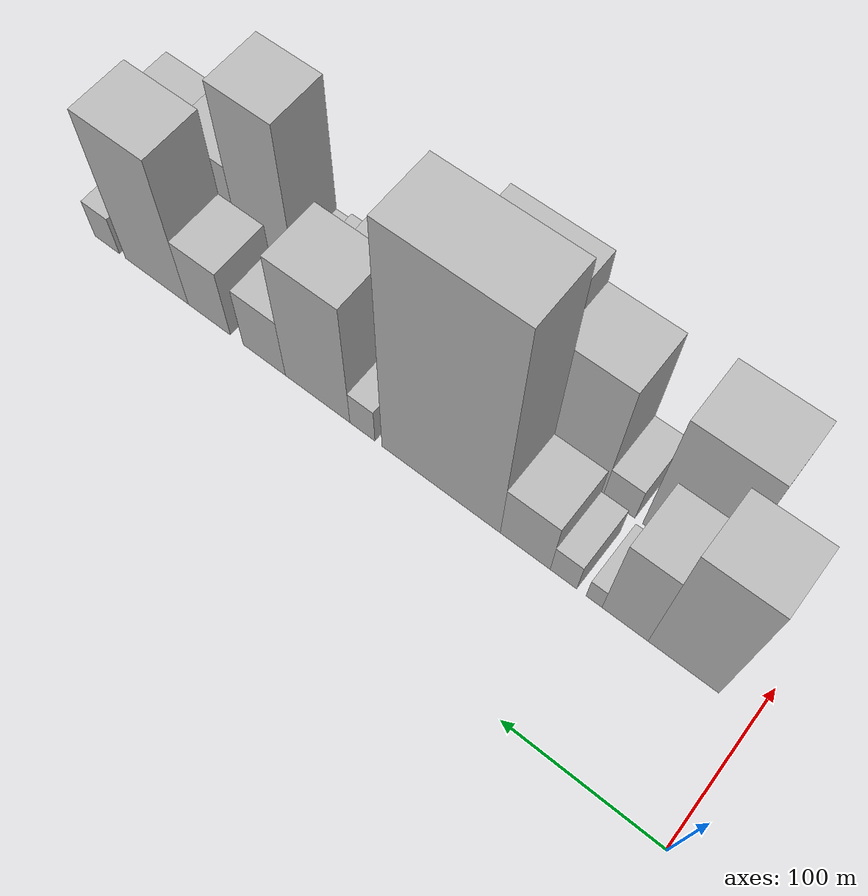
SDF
<sdf version="1.6">
 <world name="default">
  <model name="building_11">
   <static>1</static>
   <pose>100.0000 42.9381 0 0.000000 0.000000 0.000000</pose>
   <link name="link">
    <pose>0 0 67.50 0 0 0</pose>
    <collision name="collision"><geometry><box><size>40.0000 43.4441 135.0000</size></box></geometry></collision>
    <visual name="visual">
     <cast_shadows>0</cast_shadows>
     <geometry><box><size>40.0000 43.4441 135.0000</size></box></geometry>
     <material>
      <script>
       <uri>model://HANNAS_wall/materials/scripts</uri>
       <uri>model://HANNAS_wall/materials/textures</uri>
       <name>vrc/HANNAS_wall</name>
      </script>
     </material>
    </visual>
   </link>
  </model>
  <model name="building_12">
   <static>1</static>
   <pose>100.0000 79.1691 0 0.000000 0.000000 0.000000</pose>
   <link name="link">
    <pose>0 0 48.00 0 0 0</pose>
    <collision name="collision"><geometry><box><size>40.0000 29.0181 96.0000</size></box></geometry></collision>
    <visual name="visual">
     <cast_shadows>0</cast_shadows>
     <geometry><box><size>40.0000 29.0181 96.0000</size></box></geometry>
     <material>
      <script>
       <uri>model://HANNAS_wall/materials/scripts</uri>
       <uri>model://HANNAS_wall/materials/textures</uri>
       <name>vrc/HANNAS_wall</name>
      </script>
     </material>
    </visual>
   </link>
  </model>
  <model name="building_13">
   <static>1</static>
   <pose>100.0000 98.7861 0 0.000000 0.000000 0.000000</pose>
   <link name="link">
    <pose>0 0 12.00 0 0 0</pose>
    <collision name="collision"><geometry><box><size>40.0000 10.2159 24.0000</size></box></geometry></collision>
    <visual name="visual">
     <cast_shadows>0</cast_shadows>
     <geometry><box><size>40.0000 10.2159 24.0000</size></box></geometry>
     <material>
      <script>
       <uri>model://HANNAS_wall/materials/scripts</uri>
       <uri>model://HANNAS_wall/materials/textures</uri>
       <name>vrc/HANNAS_wall</name>
      </script>
     </material>
    </visual>
   </link>
  </model>
  <model name="building_14">
   <static>1</static>
   <pose>100.0000 118.5162 0 0.000000 0.000000 0.000000</pose>
   <link name="link">
    <pose>0 0 16.50 0 0 0</pose>
    <collision name="collision"><geometry><box><size>40.0000 17.2442 33.0000</size></box></geometry></collision>
    <visual name="visual">
     <cast_shadows>0</cast_shadows>
     <geometry><box><size>40.0000 17.2442 33.0000</size></box></geometry>
     <material>
      <script>
       <uri>model://HANNAS_wall/materials/scripts</uri>
       <uri>model://HANNAS_wall/materials/textures</uri>
       <name>vrc/HANNAS_wall</name>
      </script>
     </material>
    </visual>
   </link>
  </model>
  <model name="building_15">
   <static>1</static>
   <pose>100.0000 143.7085 0 0.000000 0.000000 0.000000</pose>
   <link name="link">
    <pose>0 0 30.00 0 0 0</pose>
    <collision name="collision"><geometry><box><size>40.0000 33.1403 60.0000</size></box></geometry></collision>
    <visual name="visual">
     <cast_shadows>0</cast_shadows>
     <geometry><box><size>40.0000 33.1403 60.0000</size></box></geometry>
     <material>
      <script>
       <uri>model://HANNAS_wall/materials/scripts</uri>
       <uri>model://HANNAS_wall/materials/textures</uri>
       <name>vrc/HANNAS_wall</name>
      </script>
     </material>
    </visual>
   </link>
  </model>
  <model name="building_16">
   <static>1</static>
   <pose>100.0000 201.2774 0 0.000000 0.000000 0.000000</pose>
   <link name="link">
    <pose>0 0 112.50 0 0 0</pose>
    <collision name="collision"><geometry><box><size>40.0000 81.9976 225.0000</size></box></geometry></collision>
    <visual name="visual">
     <cast_shadows>0</cast_shadows>
     <geometry><box><size>40.0000 81.9976 225.0000</size></box></geometry>
     <material>
      <script>
       <uri>model://HANNAS_wall/materials/scripts</uri>
       <uri>model://HANNAS_wall/materials/textures</uri>
       <name>vrc/HANNAS_wall</name>
      </script>
     </material>
    </visual>
   </link>
  </model>
  <model name="building_17">
   <static>1</static>
   <pose>100.0000 256.3181 0 0.000000 0.000000 0.000000</pose>
   <link name="link">
    <pose>0 0 18.00 0 0 0</pose>
    <collision name="collision"><geometry><box><size>40.0000 18.0838 36.0000</size></box></geometry></collision>
    <visual name="visual">
     <cast_shadows>0</cast_shadows>
     <geometry><box><size>40.0000 18.0838 36.0000</size></box></geometry>
     <material>
      <script>
       <uri>model://HANNAS_wall/materials/scripts</uri>
       <uri>model://HANNAS_wall/materials/textures</uri>
       <name>vrc/HANNAS_wall</name>
      </script>
     </material>
    </visual>
   </link>
  </model>
  <model name="building_18">
   <static>1</static>
   <pose>100.0000 289.2772 0 0.000000 0.000000 0.000000</pose>
   <link name="link">
    <pose>0 0 63.00 0 0 0</pose>
    <collision name="collision"><geometry><box><size>40.0000 47.8344 126.0000</size></box></geometry></collision>
    <visual name="visual">
     <cast_shadows>0</cast_shadows>
     <geometry><box><size>40.0000 47.8344 126.0000</size></box></geometry>
     <material>
      <script>
       <uri>model://HANNAS_wall/materials/scripts</uri>
       <uri>model://HANNAS_wall/materials/textures</uri>
       <name>vrc/HANNAS_wall</name>
      </script>
     </material>
    </visual>
   </link>
  </model>
  <model name="building_19">
   <static>1</static>
   <pose>100.0000 329.2720 0 0.000000 0.000000 0.000000</pose>
   <link name="link">
    <pose>0 0 30.00 0 0 0</pose>
    <collision name="collision"><geometry><box><size>40.0000 32.1552 60.0000</size></box></geometry></collision>
    <visual name="visual">
     <cast_shadows>0</cast_shadows>
     <geometry><box><size>40.0000 32.1552 60.0000</size></box></geometry>
     <material>
      <script>
       <uri>model://HANNAS_wall/materials/scripts</uri>
       <uri>model://HANNAS_wall/materials/textures</uri>
       <name>vrc/HANNAS_wall</name>
      </script>
     </material>
    </visual>
   </link>
  </model>
  <model name="building_20">
   <static>1</static>
   <pose>100.0000 371.9469 0 0.000000 0.000000 0.000000</pose>
   <link name="link">
    <pose>0 0 33.00 0 0 0</pose>
    <collision name="collision"><geometry><box><size>40.0000 33.1946 66.0000</size></box></geometry></collision>
    <visual name="visual">
     <cast_shadows>0</cast_shadows>
     <geometry><box><size>40.0000 33.1946 66.0000</size></box></geometry>
     <material>
      <script>
       <uri>model://HANNAS_wall/materials/scripts</uri>
       <uri>model://HANNAS_wall/materials/textures</uri>
       <name>vrc/HANNAS_wall</name>
      </script>
     </material>
    </visual>
   </link>
  </model>
  <model name="building_21">
   <static>1</static>
   <pose>100.0000 413.9653 0 0.000000 0.000000 0.000000</pose>
   <link name="link">
    <pose>0 0 69.00 0 0 0</pose>
    <collision name="collision"><geometry><box><size>40.0000 50.8423 138.0000</size></box></geometry></collision>
    <visual name="visual">
     <cast_shadows>0</cast_shadows>
     <geometry><box><size>40.0000 50.8423 138.0000</size></box></geometry>
     <material>
      <script>
       <uri>model://HANNAS_wall/materials/scripts</uri>
       <uri>model://HANNAS_wall/materials/textures</uri>
       <name>vrc/HANNAS_wall</name>
      </script>
     </material>
    </visual>
   </link>
  </model>
  <model name="building_22">
   <static>1</static>
   <pose>100.0000 454.6473 0 0.000000 0.000000 0.000000</pose>
   <link name="link">
    <pose>0 0 18.00 0 0 0</pose>
    <collision name="collision"><geometry><box><size>40.0000 20.5216 36.0000</size></box></geometry></collision>
    <visual name="visual">
     <cast_shadows>0</cast_shadows>
     <geometry><box><size>40.0000 20.5216 36.0000</size></box></geometry>
     <material>
      <script>
       <uri>model://HANNAS_wall/materials/scripts</uri>
       <uri>model://HANNAS_wall/materials/textures</uri>
       <name>vrc/HANNAS_wall</name>
      </script>
     </material>
    </visual>
   </link>
  </model>
  <model name="building_35">
   <static>1</static>
   <pose>152.0000 77.6293 0 0.000000 0.000000 0.000000</pose>
   <link name="link">
    <pose>0 0 66.00 0 0 0</pose>
    <collision name="collision"><geometry><box><size>40.0000 51.2232 132.0000</size></box></geometry></collision>
    <visual name="visual">
     <cast_shadows>0</cast_shadows>
     <geometry><box><size>40.0000 51.2232 132.0000</size></box></geometry>
     <material>
      <script>
       <uri>model://HANNAS_wall/materials/scripts</uri>
       <uri>model://HANNAS_wall/materials/textures</uri>
       <name>vrc/HANNAS_wall</name>
      </script>
     </material>
    </visual>
   </link>
  </model>
  <model name="building_36">
   <static>1</static>
   <pose>152.0000 118.7397 0 0.000000 0.000000 0.000000</pose>
   <link name="link">
    <pose>0 0 18.00 0 0 0</pose>
    <collision name="collision"><geometry><box><size>40.0000 20.9976 36.0000</size></box></geometry></collision>
    <visual name="visual">
     <cast_shadows>0</cast_shadows>
     <geometry><box><size>40.0000 20.9976 36.0000</size></box></geometry>
     <material>
      <script>
       <uri>model://HANNAS_wall/materials/scripts</uri>
       <uri>model://HANNAS_wall/materials/textures</uri>
       <name>vrc/HANNAS_wall</name>
      </script>
     </material>
    </visual>
   </link>
  </model>
  <model name="building_37">
   <static>1</static>
   <pose>152.0000 151.8270 0 0.000000 0.000000 0.000000</pose>
   <link name="link">
    <pose>0 0 63.00 0 0 0</pose>
    <collision name="collision"><geometry><box><size>40.0000 45.1769 126.0000</size></box></geometry></collision>
    <visual name="visual">
     <cast_shadows>0</cast_shadows>
     <geometry><box><size>40.0000 45.1769 126.0000</size></box></geometry>
     <material>
      <script>
       <uri>model://HANNAS_wall/materials/scripts</uri>
       <uri>model://HANNAS_wall/materials/textures</uri>
       <name>vrc/HANNAS_wall</name>
      </script>
     </material>
    </visual>
   </link>
  </model>
  <model name="building_38">
   <static>1</static>
   <pose>152.0000 204.2733 0 0.000000 0.000000 0.000000</pose>
   <link name="link">
    <pose>0 0 76.50 0 0 0</pose>
    <collision name="collision"><geometry><box><size>40.0000 59.7157 153.0000</size></box></geometry></collision>
    <visual name="visual">
     <cast_shadows>0</cast_shadows>
     <geometry><box><size>40.0000 59.7157 153.0000</size></box></geometry>
     <material>
      <script>
       <uri>model://HANNAS_wall/materials/scripts</uri>
       <uri>model://HANNAS_wall/materials/textures</uri>
       <name>vrc/HANNAS_wall</name>
      </script>
     </material>
    </visual>
   </link>
  </model>
  <model name="building_39">
   <static>1</static>
   <pose>152.0000 244.7584 0 0.000000 0.000000 0.000000</pose>
   <link name="link">
    <pose>0 0 10.50 0 0 0</pose>
    <collision name="collision"><geometry><box><size>40.0000 9.2546 21.0000</size></box></geometry></collision>
    <visual name="visual">
     <cast_shadows>0</cast_shadows>
     <geometry><box><size>40.0000 9.2546 21.0000</size></box></geometry>
     <material>
      <script>
       <uri>model://HANNAS_wall/materials/scripts</uri>
       <uri>model://HANNAS_wall/materials/textures</uri>
       <name>vrc/HANNAS_wall</name>
      </script>
     </material>
    </visual>
   </link>
  </model>
  <model name="building_40">
   <static>1</static>
   <pose>152.0000 262.8063 0 0.000000 0.000000 0.000000</pose>
   <link name="link">
    <pose>0 0 22.50 0 0 0</pose>
    <collision name="collision"><geometry><box><size>40.0000 26.8412 45.0000</size></box></geometry></collision>
    <visual name="visual">
     <cast_shadows>0</cast_shadows>
     <geometry><box><size>40.0000 26.8412 45.0000</size></box></geometry>
     <material>
      <script>
       <uri>model://HANNAS_wall/materials/scripts</uri>
       <uri>model://HANNAS_wall/materials/textures</uri>
       <name>vrc/HANNAS_wall</name>
      </script>
     </material>
    </visual>
   </link>
  </model>
  <model name="building_41">
   <static>1</static>
   <pose>152.0000 294.2332 0 0.000000 0.000000 0.000000</pose>
   <link name="link">
    <pose>0 0 36.00 0 0 0</pose>
    <collision name="collision"><geometry><box><size>40.0000 36.0126 72.0000</size></box></geometry></collision>
    <visual name="visual">
     <cast_shadows>0</cast_shadows>
     <geometry><box><size>40.0000 36.0126 72.0000</size></box></geometry>
     <material>
      <script>
       <uri>model://HANNAS_wall/materials/scripts</uri>
       <uri>model://HANNAS_wall/materials/textures</uri>
       <name>vrc/HANNAS_wall</name>
      </script>
     </material>
    </visual>
   </link>
  </model>
  <model name="building_42">
   <static>1</static>
   <pose>152.0000 329.3106 0 0.000000 0.000000 0.000000</pose>
   <link name="link">
    <pose>0 0 16.50 0 0 0</pose>
    <collision name="collision"><geometry><box><size>40.0000 18.1423 33.0000</size></box></geometry></collision>
    <visual name="visual">
     <cast_shadows>0</cast_shadows>
     <geometry><box><size>40.0000 18.1423 33.0000</size></box></geometry>
     <material>
      <script>
       <uri>model://HANNAS_wall/materials/scripts</uri>
       <uri>model://HANNAS_wall/materials/textures</uri>
       <name>vrc/HANNAS_wall</name>
      </script>
     </material>
    </visual>
   </link>
  </model>
  <model name="building_43">
   <static>1</static>
   <pose>152.0000 344.3892 0 0.000000 0.000000 0.000000</pose>
   <link name="link">
    <pose>0 0 13.50 0 0 0</pose>
    <collision name="collision"><geometry><box><size>40.0000 12.0149 27.0000</size></box></geometry></collision>
    <visual name="visual">
     <cast_shadows>0</cast_shadows>
     <geometry><box><size>40.0000 12.0149 27.0000</size></box></geometry>
     <material>
      <script>
       <uri>model://HANNAS_wall/materials/scripts</uri>
       <uri>model://HANNAS_wall/materials/textures</uri>
       <name>vrc/HANNAS_wall</name>
      </script>
     </material>
    </visual>
   </link>
  </model>
  <model name="building_44">
   <static>1</static>
   <pose>152.0000 372.6323 0 0.000000 0.000000 0.000000</pose>
   <link name="link">
    <pose>0 0 72.00 0 0 0</pose>
    <collision name="collision"><geometry><box><size>40.0000 44.4713 144.0000</size></box></geometry></collision>
    <visual name="visual">
     <cast_shadows>0</cast_shadows>
     <geometry><box><size>40.0000 44.4713 144.0000</size></box></geometry>
     <material>
      <script>
       <uri>model://HANNAS_wall/materials/scripts</uri>
       <uri>model://HANNAS_wall/materials/textures</uri>
       <name>vrc/HANNAS_wall</name>
      </script>
     </material>
    </visual>
   </link>
  </model>
  <model name="building_45">
   <static>1</static>
   <pose>152.0000 415.8601 0 0.000000 0.000000 0.000000</pose>
   <link name="link">
    <pose>0 0 36.00 0 0 0</pose>
    <collision name="collision"><geometry><box><size>40.0000 41.9843 72.0000</size></box></geometry></collision>
    <visual name="visual">
     <cast_shadows>0</cast_shadows>
     <geometry><box><size>40.0000 41.9843 72.0000</size></box></geometry>
     <material>
      <script>
       <uri>model://HANNAS_wall/materials/scripts</uri>
       <uri>model://HANNAS_wall/materials/textures</uri>
       <name>vrc/HANNAS_wall</name>
      </script>
     </material>
    </visual>
   </link>
  </model>
  <model name="building_46">
   <static>1</static>
   <pose>152.0000 456.0974 0 0.000000 0.000000 0.000000</pose>
   <link name="link">
    <pose>0 0 36.00 0 0 0</pose>
    <collision name="collision"><geometry><box><size>40.0000 38.4902 72.0000</size></box></geometry></collision>
    <visual name="visual">
     <cast_shadows>0</cast_shadows>
     <geometry><box><size>40.0000 38.4902 72.0000</size></box></geometry>
     <material>
      <script>
       <uri>model://HANNAS_wall/materials/scripts</uri>
       <uri>model://HANNAS_wall/materials/textures</uri>
       <name>vrc/HANNAS_wall</name>
      </script>
     </material>
    </visual>
   </link>
  </model>
 </world>
</sdf>
